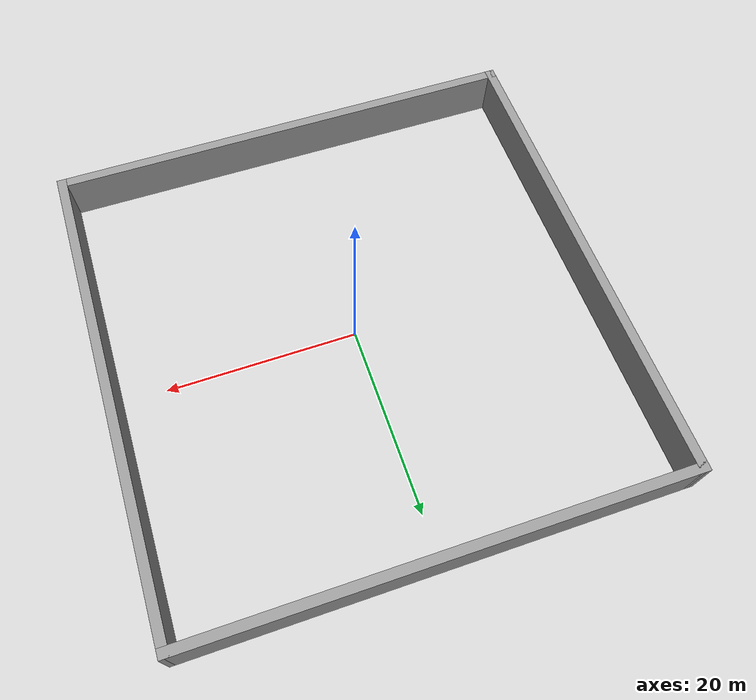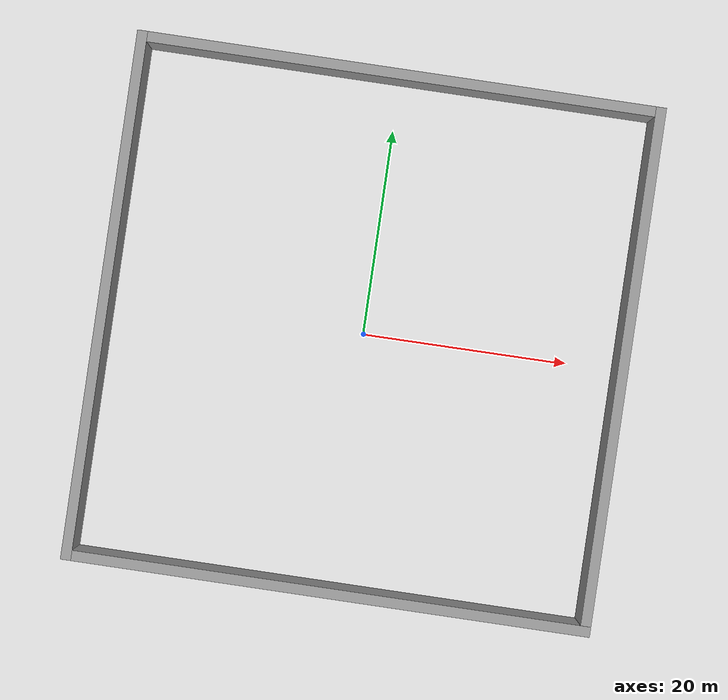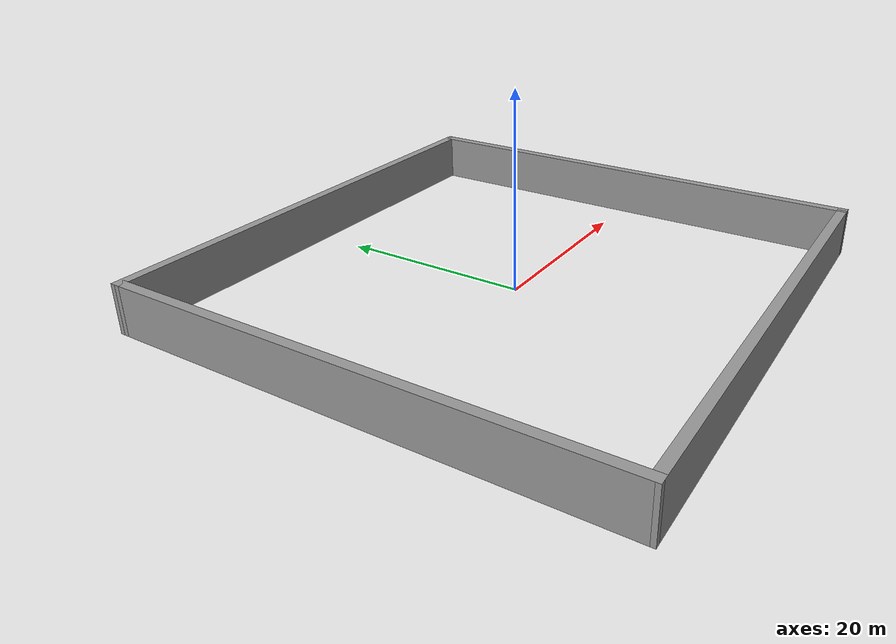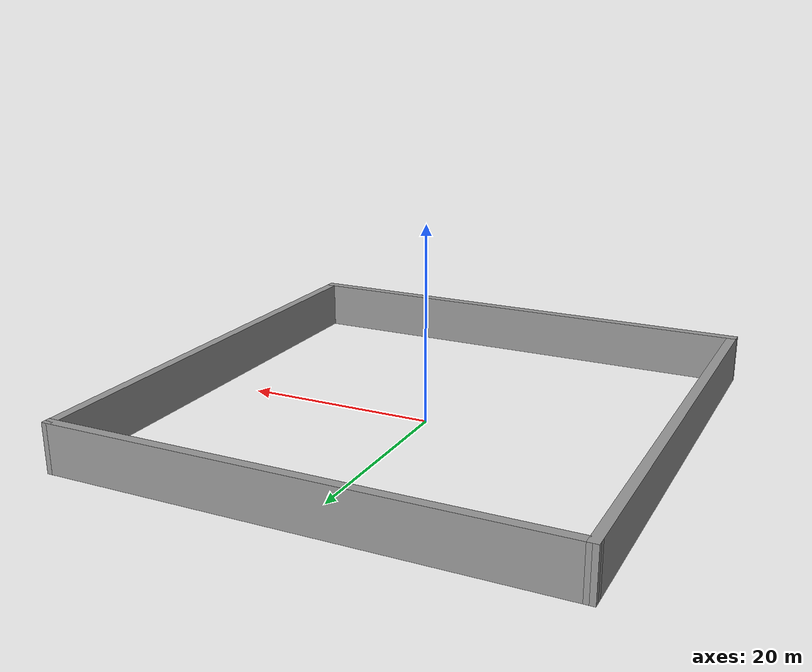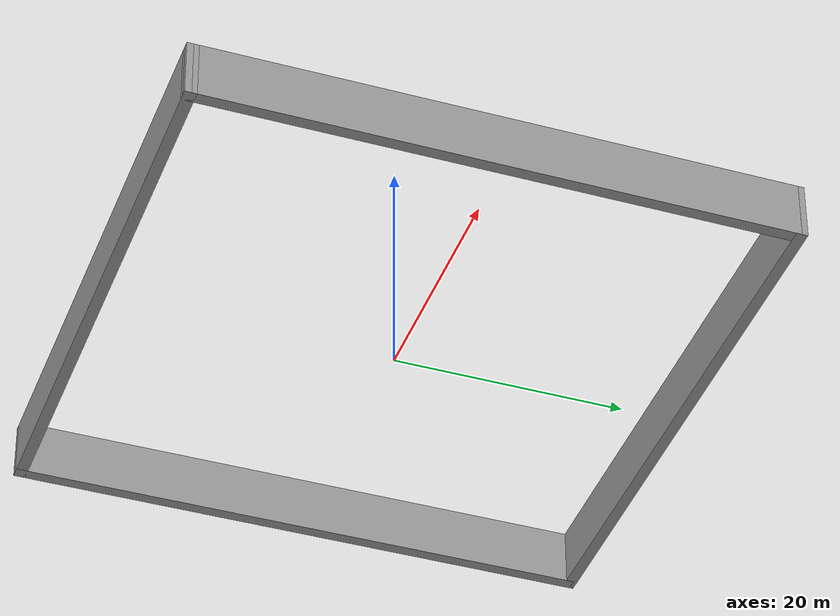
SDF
<?xml version='1.0'?>
<sdf version='1.7'>
  <model name='Map1'>
    <pose>0 0.054001 0 0 -0 0</pose>
    <link name='Wall_3'>
      <collision name='Wall_3_Collision'>
        <geometry>
          <box>
            <size>51 1 5</size>
          </box>
        </geometry>
        <pose>0 0 2.5 0 -0 0</pose>
      </collision>
      <visual name='Wall_3_Visual'>
        <pose>0 0 2.5 0 -0 0</pose>
        <geometry>
          <box>
            <size>51 1 5</size>
          </box>
        </geometry>
        <material>
          <script>
            <uri>file://media/materials/scripts/gazebo.material</uri>
            <name>Gazebo/Grey</name>
          </script>
          <ambient>1 1 1 1</ambient>
        </material>
        <meta>
          <layer>0</layer>
        </meta>
      </visual>
      <pose>-25 0.053999 0 0 -0 -1.5708</pose>
    </link>
    <link name='Wall_4'>
      <collision name='Wall_4_Collision'>
        <geometry>
          <box>
            <size>51 1 5</size>
          </box>
        </geometry>
        <pose>0 0 2.5 0 -0 0</pose>
      </collision>
      <visual name='Wall_4_Visual'>
        <pose>0 0 2.5 0 -0 0</pose>
        <geometry>
          <box>
            <size>51 1 5</size>
          </box>
        </geometry>
        <material>
          <script>
            <uri>file://media/materials/scripts/gazebo.material</uri>
            <name>Gazebo/Grey</name>
          </script>
          <ambient>1 1 1 1</ambient>
        </material>
        <meta>
          <layer>0</layer>
        </meta>
      </visual>
      <pose>0 -25 0 0 -0 -0.00216</pose>
    </link>
    <link name='Wall_5'>
      <collision name='Wall_5_Collision'>
        <geometry>
          <box>
            <size>51 1 5</size>
          </box>
        </geometry>
        <pose>0 0 2.5 0 -0 0</pose>
      </collision>
      <visual name='Wall_5_Visual'>
        <pose>0 0 2.5 0 -0 0</pose>
        <geometry>
          <box>
            <size>51 1 5</size>
          </box>
        </geometry>
        <material>
          <script>
            <uri>file://media/materials/scripts/gazebo.material</uri>
            <name>Gazebo/Grey</name>
          </script>
          <ambient>1 1 1 1</ambient>
        </material>
        <meta>
          <layer>0</layer>
        </meta>
      </visual>
      <pose>25 -0.054001 0 0 -0 1.5708</pose>
    </link>
    <link name='Wall_6'>
      <collision name='Wall_6_Collision'>
        <geometry>
          <box>
            <size>51 1 5</size>
          </box>
        </geometry>
        <pose>0 0 2.5 0 -0 0</pose>
      </collision>
      <visual name='Wall_6_Visual'>
        <pose>0 0 2.5 0 -0 0</pose>
        <geometry>
          <box>
            <size>51 1 5</size>
          </box>
        </geometry>
        <material>
          <script>
            <uri>file://media/materials/scripts/gazebo.material</uri>
            <name>Gazebo/Grey</name>
          </script>
          <ambient>1 1 1 1</ambient>
        </material>
        <meta>
          <layer>0</layer>
        </meta>
      </visual>
      <pose>0 25 0 0 -0 3.13943</pose>
    </link>
    <static>1</static>
  </model>
</sdf>
